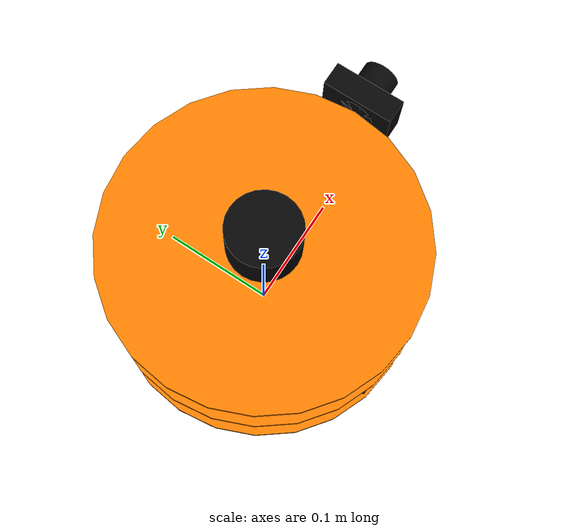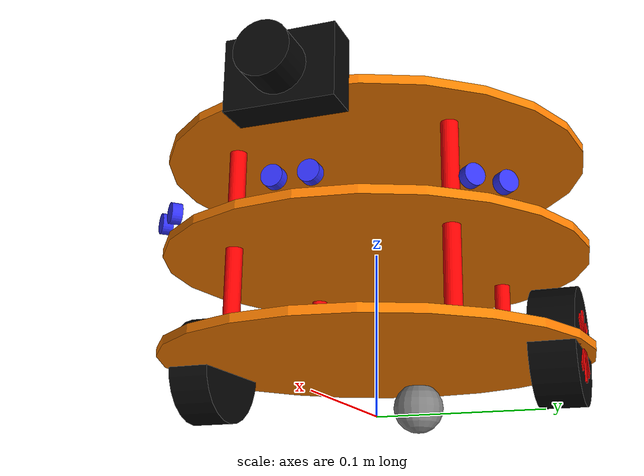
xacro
<?xml version="1.0"?>
<robot name="obot" xmlns:xacro="http://www.ros.org/wiki/xacro">

    <xacro:include filename="color_macros.xacro" />
    <xacro:include filename="inertia_macros.xacro" />
    <xacro:include filename="robot_core.xacro" />
    <xacro:include filename="controllers/ign_gazebo_control.xacro" />

</robot>

<!-- xacro robot_urdf.xacro > _robot.urdf -->

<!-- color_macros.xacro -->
<robot xmlns:xacro="http://www.ros.org/wiki/xacro" >

    <xacro:macro name="material_blue">
        <material name="blue">
            <color rgba="0.2 0.2 1 1"/>
        </material>
    </xacro:macro>

    <xacro:macro name="material_white">
        <material name="white">
            <color rgba="0.955 0.955 0.955 1"/>
        </material>
    </xacro:macro>

    <xacro:macro name="material_grey">
        <material name="grey">
            <color rgba="0.3 0.3 0.3 1"/>
        </material>
    </xacro:macro>

    <xacro:macro name="material_orange">
        <material name="orange">
            <color rgba="1 0.5 0 1"/>
        </material>
    </xacro:macro>

    <xacro:macro name="material_red">
        <material name="red">
            <color rgba="1 0 0 0 1"/>
        </material>
    </xacro:macro>

    <xacro:macro name="material_black">
        <material name="black">
            <color rgba="0.05 0.05 0.05 1"/>
        </material>
    </xacro:macro>

    <xacro:macro name="material_silver">
        <material name="silver">
            <color rgba="0.5 0.5 0.5 1"/>
        </material>
    </xacro:macro>

</robot>

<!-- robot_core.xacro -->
<robot xmlns:xacro="http://www.ros.org/wiki/xacro">

    <xacro:include filename="other_parts/drive_wheel_macro.xacro"/>
    <xacro:include filename="other_parts/drive_wheel_rim_macro.xacro"/>

    <xacro:include filename="sensors/sonar.xacro"/>
    <xacro:include filename="sensors/lidar.xacro"/>
    <xacro:include filename="sensors/imu.xacro"/>
    <xacro:include filename="sensors/cam.xacro"/>

    <xacro:property name="chassis_radius" value="0.13"/>
    <xacro:property name="chassis_thickness" value="0.005"/>
    <xacro:property name="chassis_mass" value="2.0"/>
    <xacro:property name="beam_height" value="0.06"/>
    <xacro:property name="beam_radius" value="0.005"/>
    <xacro:property name="chassis_color" value="orange"/>

    <xacro:property name="wheel_seperation" value="0.22"/>
    <xacro:property name="wheel_radius" value="0.034"/>
    <xacro:property name="wheel_width" value="0.026"/>
    <xacro:property name="wheel_mass" value="0.08"/>

    <xacro:property name="castor_wheel_radius" value="${wheel_radius/2}"/>
    <xacro:property name="castor_wheel_mass" value="0.04"/>

    <!-- BASE LINK -->

    <link name="base_link">
    </link>

    <!-- CHASSIS LINK -->

    <joint name="chassis_joint" type="fixed">
        <parent link="base_link"/>
        <child link="chassis"/>
        <origin xyz="0 0 ${wheel_radius}"/>
    </joint>

    <link name="chassis">

      <visual>
          <origin xyz="0 0 0" rpy="0 0 0"/>
          <geometry>
            <cylinder radius="${chassis_radius}" length="${chassis_thickness}"/>
          </geometry>
          <xacro:material_orange/>
      </visual>
      <visual>
          <origin xyz="0 0 ${beam_height}" rpy="0 0 0"/>
          <geometry>
            <cylinder radius="${chassis_radius}" length="${chassis_thickness}"/>
          </geometry>
          <xacro:material_orange/>
      </visual>
      <visual>
          <origin xyz="0 0 ${beam_height*2}" rpy="0 0 0"/>
          <geometry>
            <cylinder radius="${chassis_radius}" length="${chassis_thickness}"/>
          </geometry>
          <xacro:material_orange/>
      </visual>

      <visual>
          <origin xyz="${chassis_radius/2} ${chassis_radius/2} ${beam_height}" rpy="0 0 0"/>
          <geometry>
            <cylinder radius="${beam_radius}" length="${beam_height*2}"/>
          </geometry>
          <xacro:material_red/>
      </visual>
      <visual>
          <origin xyz="${chassis_radius/2} ${-chassis_radius/2} ${beam_height}" rpy="0 0 0"/>
          <geometry>
            <cylinder radius="${beam_radius}" length="${beam_height*2}"/>
          </geometry>
          <xacro:material_red/>
      </visual>
      <visual>
          <origin xyz="${-chassis_radius/2} ${chassis_radius/2} ${beam_height}" rpy="0 0 0"/>
          <geometry>
            <cylinder radius="${beam_radius}" length="${beam_height*2}"/>
          </geometry>
          <xacro:material_red/>
      </visual>
      <visual>
          <origin xyz="${-chassis_radius/2} ${-chassis_radius/2} ${beam_height}" rpy="0 0 0"/>
          <geometry>
            <cylinder radius="${beam_radius}" length="${beam_height*2}"/>
          </geometry>
          <xacro:material_red/>
      </visual>

      <collision>
          <origin xyz="0 0 ${beam_height}" rpy="0 0 0"/>
          <geometry>
            <cylinder radius="${chassis_radius}" length="${beam_height*2}"/>
          </geometry>
      </collision>
      <xacro:inertial_cylinder mass="${chassis_mass}" length="${chassis_thickness}" radius="${chassis_radius}">
          <origin xyz="${-chassis_radius/1.5} 0 0" rpy="0 0 0"/>
      </xacro:inertial_cylinder>
    </link>

    <!-- LEFT DRIVE WHEEL -->

    <xacro:insert_drive_wheel
        base_name="left_wheel"
        parent_name="base_link"
        x="0" y="${wheel_seperation/2}" z="${wheel_radius}"
        mass="${wheel_mass}"
        radius="${wheel_radius}"
        thickness="${wheel_width}"/>

    <xacro:insert_drive_wheel_rim
        base_name="left_rim"
        parent_name="left_wheel"
        x="0" y="0" z="0.001"
        radius="${wheel_radius}"
        thickness="${wheel_width}"
        spoke_width="0.005"/>

    <!-- RIGHT DRIVE WHEEL -->

    <xacro:insert_drive_wheel
        base_name="right_wheel"
        parent_name="base_link"
        x="0" y="${-wheel_seperation/2}" z="${wheel_radius}"
        mass="${wheel_mass}"
        radius="${wheel_radius}"
        thickness="${wheel_width}"/>

    <xacro:insert_drive_wheel_rim
        base_name="right_rim"
        parent_name="right_wheel"
        x="0" y="0" z="-0.001"
        radius="${wheel_radius}"
        thickness="${wheel_width}"
        spoke_width="0.005"/>

    <!--  castor WHEEL LINK -->

    <joint name="castor_wheel_joint" type="fixed">
        <parent link="base_link"/>
        <child link="castor_wheel"/>
        <origin xyz="${-chassis_radius/1.5} 0 ${castor_wheel_radius}"/>
    </joint>

    <link name="castor_wheel">
        <visual>
            <origin xyz="0 0 0" rpy="0 0 0"/>
            <geometry>
                <sphere radius="${castor_wheel_radius}" />
            </geometry>
            <xacro:material_silver/>
        </visual>
        <collision>
           <origin xyz="0 0 0" rpy="0 0 0"/>
            <geometry>
                <sphere radius="${castor_wheel_radius}" />
            </geometry>
        </collision>
        <xacro:inertial_sphere mass="${castor_wheel_mass}" radius="${castor_wheel_radius}">
            <origin xyz="0 0 0" rpy="0 0 0"/>
        </xacro:inertial_sphere>
    </link>

    <gazebo reference="castor_wheel">
        <mu1>0.001</mu1>
        <mu2>0.001</mu2>
    </gazebo>

    <!--  front-sonar -->
    <xacro:insert_sonar
        base_name="sonar_front"
        parent_name="chassis"
        x="${chassis_radius}" y="0" z="${beam_height+0.01}"
        rx="0" ry="0" rz="0"
        mass="0.005"
        min_range="0.02" max_range="3.0"
        resolution="0.01" visualize="false"/>
    <!--  left-sonar -->
    <xacro:insert_sonar
        base_name="sonar_left"
        parent_name="chassis"
        x="${chassis_radius*0.7071}" y="${chassis_radius*0.7071}" z="${beam_height+0.01}"
        rx="0.0" ry="0.0" rz="${pi/4}"
        mass="0.005"
        min_range="0.02" max_range="3.0"
        resolution="0.01" visualize="false"/>
    <!--  right-sonar -->
    <xacro:insert_sonar
        base_name="sonar_right"
        parent_name="chassis"
        x="${chassis_radius*0.7071}" y="${-chassis_radius*0.7071}" z="${beam_height+0.01}"
        rx="0.0" ry="0.0" rz="${-pi/4}"
        mass="0.005"
        min_range="0.02" max_range="3.0"
        resolution="0.01" visualize="false"/>

     <!--  lidar -->
    <xacro:property name="lidar_z_offset" value="0.04"/>
    <xacro:insert_lidar
        base_name="lidar"
        parent_name="chassis"
        x="0" y="0" z="${(beam_height*2)+lidar_z_offset}"
        mass="0.1" samples="360"
        min_angle="${-pi*2}" max_angle="${pi*2}"
        min_range="0.1" max_range="10"
        visualize="false"/>

    <!--  imu -->
    <xacro:insert_imu
        base_name="imu"
        parent_name="chassis"
        x="0" y="0" z="${beam_height}"/>

    <!-- camera -->
    <xacro:property name="cam_x_offset" value="0.04"/>
    <xacro:property name="cam_z_offset" value="0.02"/>
    <xacro:insert_camera
        base_name="camera"
        parent_name="chassis"
        x="${(chassis_radius)+cam_x_offset}" y="0" z="${(beam_height*2)}"
        mass="0.005"
        width="320" height="240"
        min_range="0.02" max_range="5.0"
        tilt_angle="0"
        visualize="false"/>

</robot>

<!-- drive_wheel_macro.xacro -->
<robot xmlns:xacro="http://www.ros.org/wiki/xacro" >

    <xacro:macro name="material_black">
        <material name="black">
            <color rgba="0.025 0.025 0.025 1"/>
        </material>
    </xacro:macro>

    <xacro:macro name="inertial_cylinder" params="mass length radius *origin">
        <inertial>
            <xacro:insert_block name="origin"/>
            <mass value="${mass}" />
            <inertia ixx="${(1/12) * mass * (3*radius*radius + length*length)}" ixy="0.0" ixz="0.0"
                    iyy="${(1/12) * mass * (3*radius*radius + length*length)}" iyz="0.0"
                    izz="${(1/2) * mass * (radius*radius)}" />
        </inertial>
    </xacro:macro>

     <!-- GAZEBO WHEEL PARAMETERS -->
    <xacro:macro name="gazebo_wheel_settings" params="name">
        <gazebo reference="${name}">
            <mu1>1.0</mu1>
            <mu2>1.0</mu2>
        </gazebo>
    </xacro:macro>

    <xacro:macro name="insert_drive_wheel" params="base_name parent_name x y z mass radius thickness">
        <joint name="${base_name}_joint" type="continuous">
            <parent link="${parent_name}"/>
            <child link="${base_name}"/>
            <origin xyz="${x} ${y} ${z}" rpy="${-pi/2} 0 0"/>
            <axis xyz="0 0 1"/>
        </joint>

        <link name="${base_name}">
            <visual>
                <origin xyz="0 0 0" rpy="0 0 0"/>
                <geometry>
                    <cylinder radius="${radius}" length="${thickness}"/>
                </geometry>
                <xacro:material_black/>
            </visual>
            <collision>
            <origin xyz="0 0 0" rpy="0 0 0"/>
                <geometry>
                    <cylinder radius="${radius}" length="${thickness}"/>
                </geometry>
            </collision>
            <xacro:inertial_cylinder mass="${mass}" length="${thickness}" radius="${radius}">
                <origin xyz="0 0 0" rpy="0 0 0"/>
            </xacro:inertial_cylinder>
        </link>

        <xacro:gazebo_wheel_settings name="${base_name}"/>

    </xacro:macro>

</robot>

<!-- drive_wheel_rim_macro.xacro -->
<robot xmlns:xacro="http://www.ros.org/wiki/xacro" >

    <xacro:macro name="material_red">
        <material name="red">
            <color rgba="1 0 0 1"/>
        </material>
    </xacro:macro>

    <xacro:macro name="insert_drive_wheel_rim" params="base_name parent_name x y z radius thickness spoke_width">

        <joint name="${base_name}_joint" type="fixed">
            <parent link="${parent_name}"/>
            <child link="${base_name}"/>
            <origin xyz="${x} ${y} ${z}" rpy="0 0 0"/>
        </joint>

        <link name="${base_name}">
            <visual>
                <origin xyz="0 0 0" rpy="0 0 0"/>
                <geometry>
                    <box size="${spoke_width} ${radius*1.2} ${thickness}"/>
                </geometry>
                <xacro:material_red/>
            </visual>
            <visual>
                <origin xyz="0 0 0" rpy="0 0 ${pi/2}"/>
                <geometry>
                    <box size="${spoke_width} ${radius*1.2} ${thickness}"/>
                </geometry>
                <xacro:material_red/>
            </visual>
            <visual>
                <origin xyz="0 0 0" rpy="0 0 ${-pi/4}"/>
                <geometry>
                    <box size="${spoke_width} ${radius*1.2} ${thickness}"/>
                </geometry>
                <xacro:material_red/>
            </visual>
            <visual>
                <origin xyz="0 0 0" rpy="0 0 ${pi/4}"/>
                <geometry>
                    <box size="${spoke_width} ${radius*1.2} ${thickness}"/>
                </geometry>
                <xacro:material_red/>
            </visual>

        </link>

    </xacro:macro>

</robot>

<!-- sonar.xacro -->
<robot xmlns:xacro="http://www.ros.org/wiki/xacro">

    <xacro:macro name="material_blue">
        <material name="blue">
            <color rgba="0.2 0.2 1 1"/>
        </material>
    </xacro:macro>

    <xacro:macro name="insert_sonar" params="base_name parent_name x y z rx ry rz mass min_range max_range resolution visualize">

        <joint name="${base_name}_joint" type="fixed">
            <parent link="${parent_name}"/>
            <child link="${base_name}"/>
            <origin xyz="${x} ${y} ${z}" rpy="${rx} ${ry} ${rz}"/>
        </joint>

        <link name="${base_name}">
            <visual>
                <origin xyz="0 0.01 0" rpy="0 ${pi/2} 0"/>
                <geometry>
                    <cylinder radius="0.006" length="0.006"/>
                </geometry>
                <xacro:material_blue/>
            </visual>
            <collision>
                <origin xyz="0 0.01 0" rpy="0 ${pi/2} 0"/>
                <geometry>
                    <cylinder radius="0.006" length="0.006"/>
                </geometry>
            </collision>

            <visual>
                <origin xyz="0 -0.01 0" rpy="0 ${pi/2} 0"/>
                <geometry>
                    <cylinder radius="0.006" length="0.006"/>
                </geometry>
                <xacro:material_blue/>
            </visual>
            <collision>
                <origin xyz="0 -0.01 0" rpy="0 ${pi/2} 0"/>
                <geometry>
                    <cylinder radius="0.006" length="0.006"/>
                </geometry>
            </collision>

            <xacro:inertial_cylinder mass="${mass}" length="0.006" radius="0.006">
                <origin xyz="0 0.01 0" rpy="0 ${pi/2} 0"/>
            </xacro:inertial_cylinder>
        </link>
    </xacro:macro>

</robot>

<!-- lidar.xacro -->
<robot xmlns:xacro="http://www.ros.org/wiki/xacro" >

    <xacro:macro name="material_black">
        <material name="black">
            <color rgba="0.025 0.025 0.025 1"/>
        </material>
    </xacro:macro>

    <xacro:macro name="insert_lidar" params="base_name parent_name x y z mass samples min_angle max_angle min_range max_range visualize">
        <joint name="${base_name}_joint" type="fixed">
            <parent link="${parent_name}"/>
            <child link="${base_name}"/>
            <origin xyz="${x} ${y} ${z}" rpy="0 0 0"/>
        </joint>

        <link name="${base_name}">
            <visual>
                <origin xyz="0 0 -0.02"/>
                <geometry>
                    <cylinder radius="0.03" length="0.04"/>
                </geometry>
                <xacro:material_black/>
            </visual>
            <collision>
                <origin xyz="0 0 -0.02"/>
                <geometry>
                    <cylinder radius="0.03" length="0.04"/>
                </geometry>
            </collision>
            <xacro:inertial_cylinder mass="${mass}" length="0.04" radius="0.03">
                <origin xyz="0 0 -0.02" rpy="0 0 0"/>
            </xacro:inertial_cylinder>
        </link>

        <gazebo reference="${base_name}">
          <sensor name='${base_name}' type='gpu_lidar'>
            <pose>0 0 0 0 0 0</pose>
            <topic>${base_name}</topic>
            <update_rate>10</update_rate>
            <ray>
              <scan>
                <horizontal>
                  <samples>${samples}</samples>
                  <min_angle>${min_angle}</min_angle>
                  <max_angle>${max_angle}</max_angle>
                  <resolution>0.5</resolution>
                </horizontal>
                <vertical>
                  <samples>1</samples>
                  <resolution>0.01</resolution>
                  <min_angle>0</min_angle>
                  <max_angle>0</max_angle>
                </vertical>
              </scan>
              <range>
                <min>${min_range}</min>
                <max>${max_range}</max>
                <resolution>0.01</resolution>
              </range>
            </ray>
            <always_on>1</always_on>
            <visualize>${visualize}</visualize>
          </sensor>
        </gazebo>
    </xacro:macro>

</robot>

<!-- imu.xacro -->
<robot xmlns:xacro="http://www.ros.org/wiki/xacro">

    <xacro:macro name="insert_imu" params="base_name parent_name x y z">
        <joint name="${base_name}_joint" type="fixed">
            <parent link="${parent_name}"/>
            <child link="${base_name}"/>
            <origin xyz="${x} ${y} ${z}" rpy="0 0 0"/>
        </joint>

        <link name="${base_name}"/>

        <gazebo reference="${base_name}">
          <sensor name="${base_name}" type="imu">
          <always_on>1</always_on>
          <update_rate>1</update_rate>
          <visualize>true</visualize>
          <topic>${base_name}</topic>
          </sensor>
        </gazebo>
    </xacro:macro>

</robot>

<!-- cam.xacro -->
<robot xmlns:xacro="http://www.ros.org/wiki/xacro" >

    <xacro:macro name="material_black">
        <material name="black">
            <color rgba="0.025 0.025 0.025 1"/>
        </material>
    </xacro:macro>

    <xacro:macro name="insert_camera" params="base_name parent_name x y z mass width height min_range max_range tilt_angle visualize">
        <joint name="${base_name}_joint" type="fixed">
            <parent link="${parent_name}"/>
            <child link="${base_name}"/>
            <origin xyz="${x} ${y} ${z}" rpy="0 ${tilt_angle} 0"/>
        </joint>

        <link name="${base_name}">
            <visual>
                <origin xyz="-0.02 0 0" rpy="0 ${-pi/2} 0"/>
                <geometry>
                    <cylinder radius="0.015" length="0.04"/>
                </geometry>
                <xacro:material_black/>
            </visual>
            <visual>
                <origin xyz="-0.03 0 0" rpy="0 ${-pi/2} 0"/>
                <geometry>
                    <box size="0.04 0.06 0.02"/>
                </geometry>
                <xacro:material_black/>
            </visual>

            <collision>
                <origin xyz="-0.02 0 0" rpy="0 ${-pi/2} 0"/>
                <geometry>
                    <cylinder radius="0.02" length="0.04"/>
                </geometry>
            </collision>
            <xacro:inertial_cylinder mass="${mass}" radius="0.02" length="0.04">
                <origin xyz="-0.02 0 0" rpy="0 ${-pi/2} 0"/>
            </xacro:inertial_cylinder>
        </link>

        <joint name="${base_name}_optical_joint" type="fixed">
            <parent link="${base_name}"/>
            <child link="${base_name}_optical_link"/>
            <origin xyz="0 0 0" rpy="${-pi/2} 0 ${-pi/2}"/>
        </joint>

        <link name="${base_name}_optical_link"/>

    </xacro:macro>

</robot>
